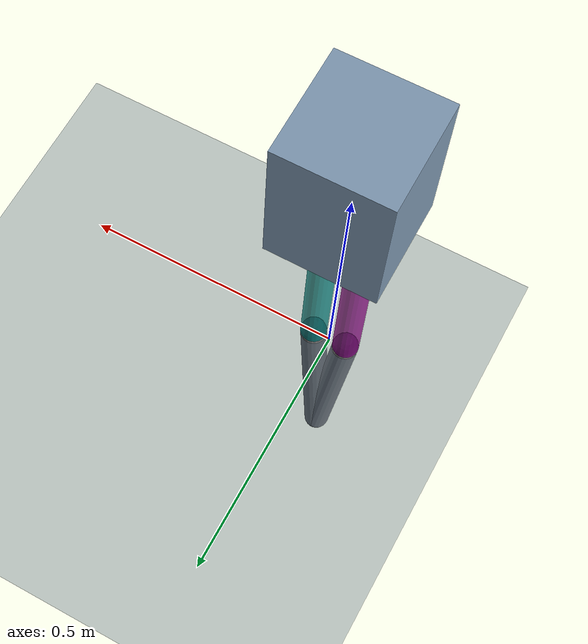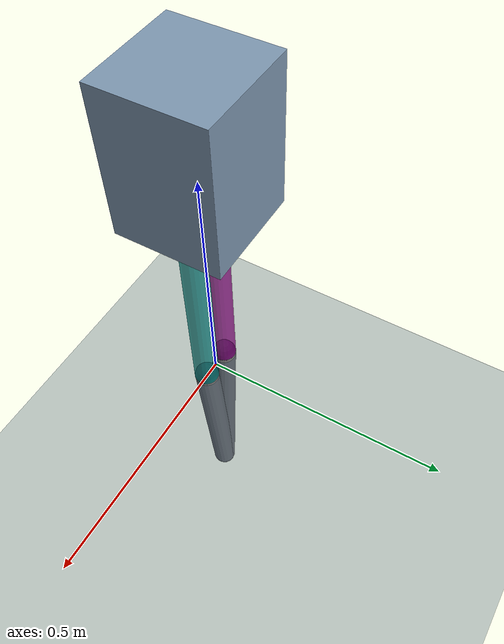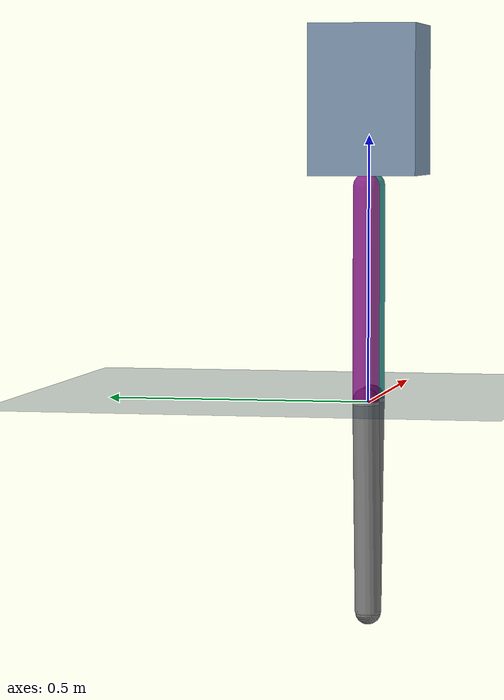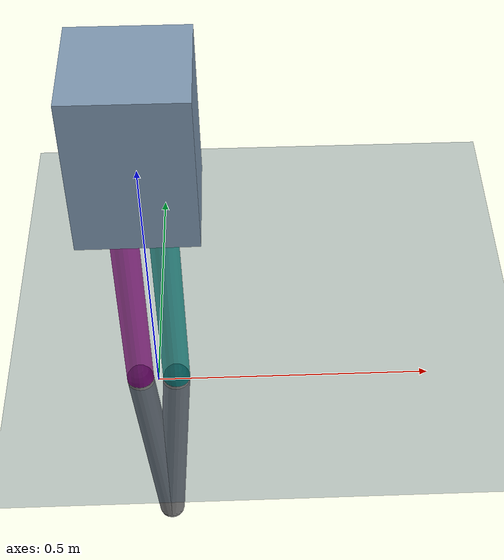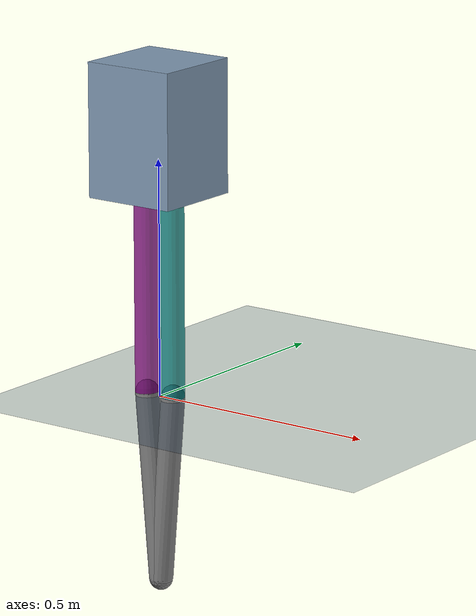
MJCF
<mujoco model="5bar">

  <compiler angle="radian"/>
  <option integrator = "implicit" timestep = "0.002"
          jacobian = "dense" cone = "elliptic"
          solver = "Newton" tolerance="1e-10"/>

  <visual>
    <headlight diffuse="0.6 0.6 0.6" ambient="0.3 0.3 0.3" specular="0 0 0"/>
    <rgba haze="0.15 0.25 0.35 1"/>
    <global azimuth="160" elevation="-20"/>
  </visual>

  <asset>
      <texture type="skybox" builtin="gradient" rgb1=".3 .5 .7" rgb2="0 0 0" width="512" height="512"/>
      <texture name="grid" type="2d" builtin="checker" width="512" height="512" rgb1=".1 .2 .3" rgb2=".2 .3 .4"/>
      <material name="grid" texture="grid" texrepeat="1 1" texuniform="true" reflectance=".2"/>
  </asset>

  <!-- Worldbody: the ground (plane) -->
  <worldbody>

    <light pos="0 0 1.5" dir="0 0 -1" directional="true"/>
    <geom name="floor" size="5 5 0.05" type="plane" material="grid" contype="3" conaffinity="3"/>

    <body name="root" pos="0 0 0.40575">
      <joint name="slide_x" type="slide" axis="1 0 0" range="-100 100"/>
      <joint name="slide_z" type="slide" axis="0 0 1" range="0 10"/>
      <joint name="hinge_y" type="hinge" axis="0 1 0" range="-0.05 0.05" damping="0.1"/>

      <body name="base" pos="0 0 0">
        <geom name="torso" type="box" size="0.1 0.1 0.14" pos="0 0 0.16" rgba="0.5 0.6 0.7 1" contype="0" conaffinity="0" mass="2.25"/>

        <!-- 5-bar mechanism rotated upright (90deg about Y) -->
        <body name="mech" quat="0.7071068 0 0.7071068 0">
        <body name="l1_left" pos="0 0 0.0335">
          <joint name="j1_left" type="hinge" pos="0 0 0" axis="0 -1 0" range="-0.785 1.57" frictionloss="0.005"/>
          <geom type="capsule" fromto="0 0 0 0.4 0 0" size="0.025" mass="1.2702" rgba="0 0.5 0.5 0.8" contype="0" conaffinity="0"/>

          <body name="l2_left" pos="0.4 0 0">
            <joint name="j2_left" type="hinge" pos="0 0 0" axis="0 -1 0" frictionloss="0.005"/>
            <geom name="l2_left_geom" type="capsule" fromto="0 0 0 0.4 0 -0.0335" size="0.025" mass="0.5642" contype="1" conaffinity="1" margin="0.002"/>
            <site name="site_l2_left" pos="0.4 0 -0.0335"/>

            <body name="pen" pos="0.4 0 -0.0335">
              <joint name="pen_joint" type="hinge" pos="0 0 0" axis="0 -1 0" frictionloss="0.005" />
              <geom name="coupler" type="sphere" size="0.006" pos="0 0 0" rgba="0.2 0.2 0.2 1" contype="0" conaffinity="0" mass="0"/>
              <geom name="pen_tip" type="cylinder" size="0.001 0.005" pos="0 0 0.004" rgba="0 0 1 0.0" contype="0" conaffinity="0"/>
              <geom name="pen_body" type="box" size="0.001 0.001 0.001" pos="0 0 0.008" rgba="0 0 1 0.0" contype="0" conaffinity="0"/>
              <site name="site_pen" pos="0 0 0"/>
            </body>
          </body>
        </body>

        <body name="l1_right" pos="0 0 -0.0335">
          <joint name="j1_right" type="hinge" pos="0 0 0" axis="0 -1 0" range="-1.57 0.785" frictionloss="0.005"/>
          <geom type="capsule" fromto="0 0 0 0.4 0 0" size="0.025" mass="1.2702" rgba="0.5 0 0.5 0.8" contype="0" conaffinity="0"/>

          <body name="l2_right" pos="0.4 0 0">
            <joint name="j2_right" type="hinge" pos="0 0 0" axis="0 -1 0" frictionloss="0.005" />
            <geom name="l2_right_geom" type="capsule" fromto="0 0 0 0.4 0 0.0335" size="0.025" mass="0.5642" contype="2" conaffinity="2" margin="0.002"/>
            <site name="site_l2_right" pos="0.4 0 0.0335"/>
          </body>
        </body>
        </body>
      </body>
    </body>

  </worldbody>

  <!-- Constraints -->
  <equality>
    <!-- Connect with anchor at sites (pin-like) -->
    <connect site1="site_l2_right" site2="site_pen" solref="0.0001 1" solimp="0.99 0.999 0.001"/>
  </equality>

  <contact>
    <exclude body1="base" body2="l1_left"/>
    <exclude body1="base" body2="l2_left"/>
    <exclude body1="base" body2="l1_right"/>
    <exclude body1="base" body2="l2_right"/>
    <exclude body1="base" body2="pen"/>
    <exclude body1="l2_left" body2="l2_right"/>
    <exclude body1="l1_left" body2="l1_right"/>
    <exclude body1="l1_left" body2="l2_right"/>
    <exclude body1="l1_right" body2="l2_left"/>
  </contact>

  <!-- Actuation -->
        <actuator>
            <motor name="motor_torque_left" joint="j1_left" ctrlrange="-44 44"/>
            <motor name="motor_torque_right" joint="j1_right" ctrlrange="-44 44"/>
        </actuator>

        <sensor>
          <touch name="touch_left" site="site_l2_left"/>
          <touch name="touch_right" site="site_l2_right"/>
        </sensor>

  <keyframe>
    <key name="ik_pose" qpos="0.00000000 0.00000000 0.00000000 2.11756886 -1.56978930 0.00000000 0.64463347 1.61167568"/>
  </keyframe>
</mujoco>
